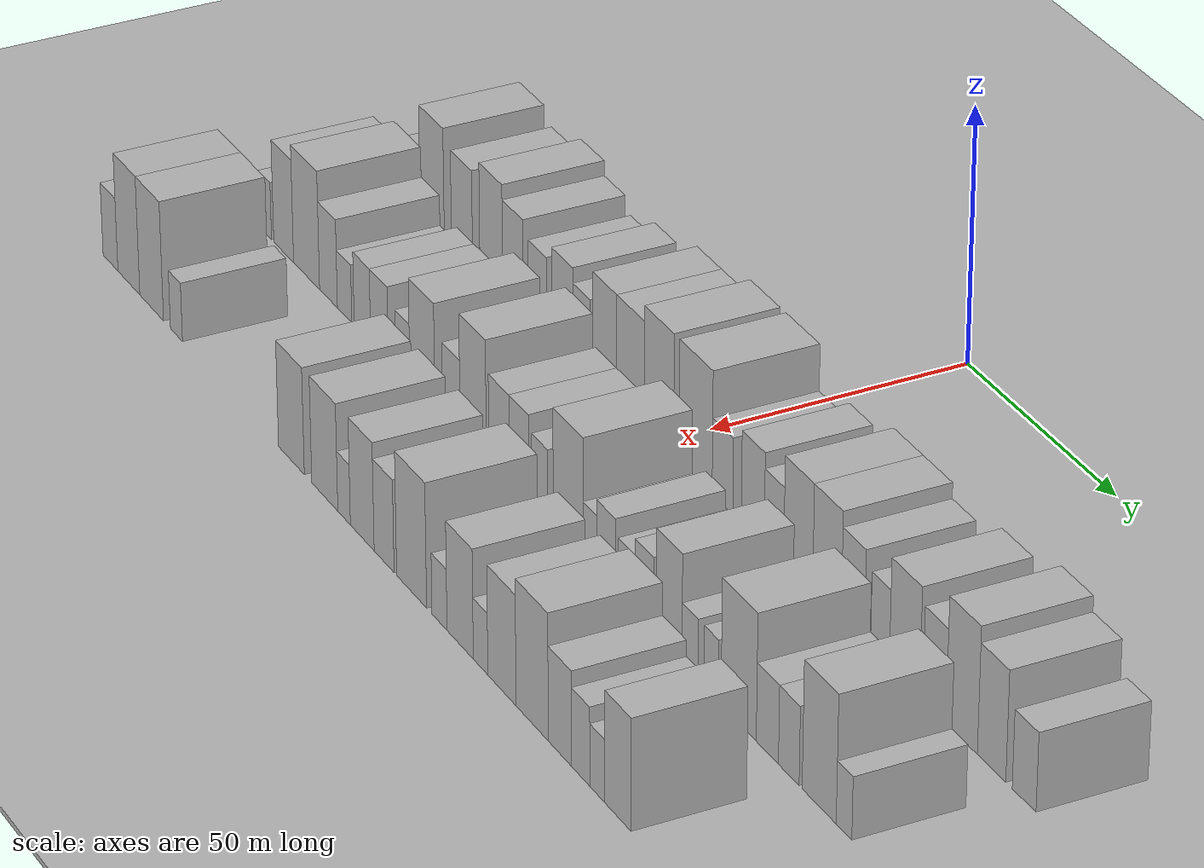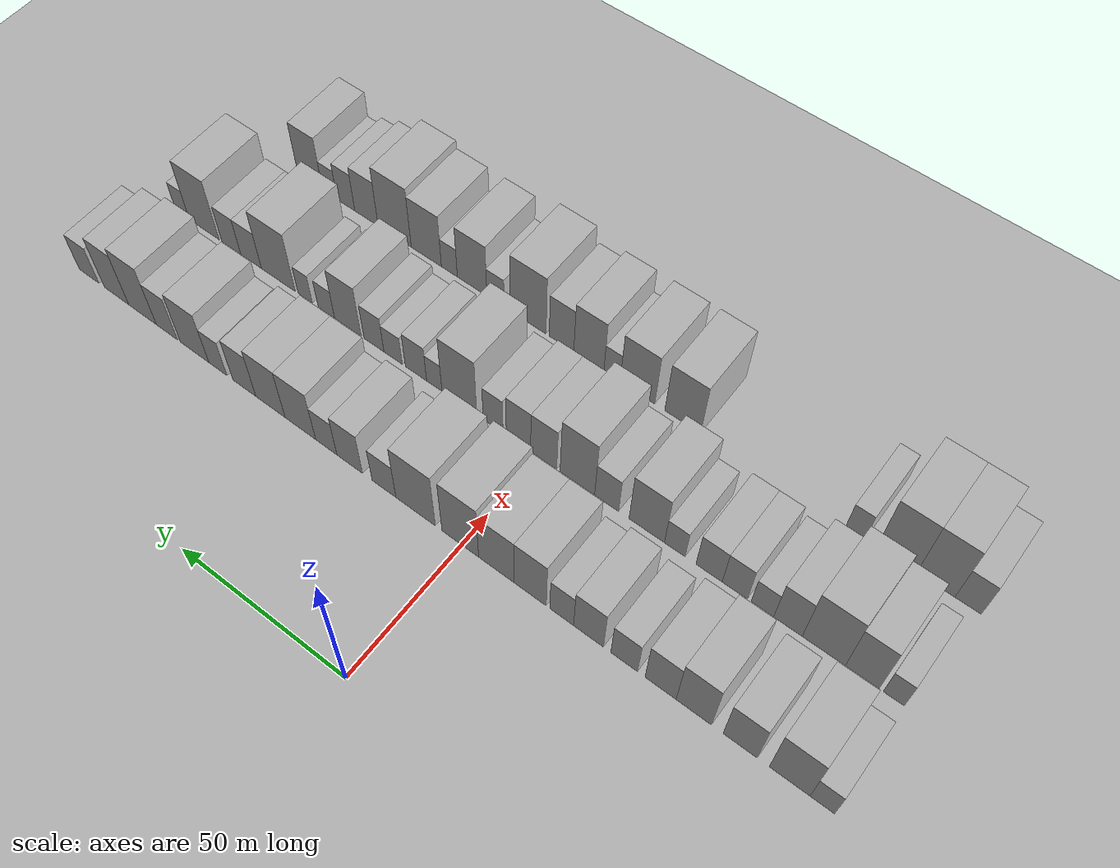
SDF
<sdf version="1.6">
 <world name="default">
  <include><name>ground_plane_1</name><uri>model://HANNAS_ground_plane</uri></include>
  <include>
   <name>ground_plane_2</name>
   <uri>model://HANNAS_ground_plane</uri>
   <pose>100 0 0  0 0 0</pose>
  </include>
  <model name="building_28">
   <static>1</static>
   <pose>50.0000 -96.7376 0 0.000000 0.000000 0.000000</pose>
   <link name="link">
    <pose>0 0 6.00 0 0 0</pose>
    <collision name="collision"><geometry><box><size>20.0000 5.9690 12.0000</size></box></geometry></collision>
    <visual name="visual">
     <cast_shadows>0</cast_shadows>
     <geometry><box><size>20.0000 5.9690 12.0000</size></box></geometry>
     <material>
      <script>
       <uri>model://HANNAS_wall/materials/scripts</uri>
       <uri>model://HANNAS_wall/materials/textures</uri>
       <name>vrc/HANNAS_wall</name>
      </script>
     </material>
    </visual>
   </link>
  </model>
  <model name="building_29">
   <static>1</static>
   <pose>50.0000 -88.7289 0 0.000000 0.000000 0.000000</pose>
   <link name="link">
    <pose>0 0 10.50 0 0 0</pose>
    <collision name="collision"><geometry><box><size>20.0000 10.0484 21.0000</size></box></geometry></collision>
    <visual name="visual">
     <cast_shadows>0</cast_shadows>
     <geometry><box><size>20.0000 10.0484 21.0000</size></box></geometry>
     <material>
      <script>
       <uri>model://HANNAS_wall/materials/scripts</uri>
       <uri>model://HANNAS_wall/materials/textures</uri>
       <name>vrc/HANNAS_wall</name>
      </script>
     </material>
    </visual>
   </link>
  </model>
  <model name="building_30">
   <static>1</static>
   <pose>50.0000 -76.3814 0 0.000000 0.000000 0.000000</pose>
   <link name="link">
    <pose>0 0 9.00 0 0 0</pose>
    <collision name="collision"><geometry><box><size>20.0000 8.6467 18.0000</size></box></geometry></collision>
    <visual name="visual">
     <cast_shadows>0</cast_shadows>
     <geometry><box><size>20.0000 8.6467 18.0000</size></box></geometry>
     <material>
      <script>
       <uri>model://HANNAS_wall/materials/scripts</uri>
       <uri>model://HANNAS_wall/materials/textures</uri>
       <name>vrc/HANNAS_wall</name>
      </script>
     </material>
    </visual>
   </link>
  </model>
  <model name="building_31">
   <static>1</static>
   <pose>50.0000 -64.4616 0 0.000000 0.000000 0.000000</pose>
   <link name="link">
    <pose>0 0 10.50 0 0 0</pose>
    <collision name="collision"><geometry><box><size>20.0000 9.1930 21.0000</size></box></geometry></collision>
    <visual name="visual">
     <cast_shadows>0</cast_shadows>
     <geometry><box><size>20.0000 9.1930 21.0000</size></box></geometry>
     <material>
      <script>
       <uri>model://HANNAS_wall/materials/scripts</uri>
       <uri>model://HANNAS_wall/materials/textures</uri>
       <name>vrc/HANNAS_wall</name>
      </script>
     </material>
    </visual>
   </link>
  </model>
  <model name="building_32">
   <static>1</static>
   <pose>50.0000 -55.7582 0 0.000000 0.000000 0.000000</pose>
   <link name="link">
    <pose>0 0 9.00 0 0 0</pose>
    <collision name="collision"><geometry><box><size>20.0000 8.2138 18.0000</size></box></geometry></collision>
    <visual name="visual">
     <cast_shadows>0</cast_shadows>
     <geometry><box><size>20.0000 8.2138 18.0000</size></box></geometry>
     <material>
      <script>
       <uri>model://HANNAS_wall/materials/scripts</uri>
       <uri>model://HANNAS_wall/materials/textures</uri>
       <name>vrc/HANNAS_wall</name>
      </script>
     </material>
    </visual>
   </link>
  </model>
  <model name="building_33">
   <static>1</static>
   <pose>50.0000 -46.0465 0 0.000000 0.000000 0.000000</pose>
   <link name="link">
    <pose>0 0 7.50 0 0 0</pose>
    <collision name="collision"><geometry><box><size>20.0000 7.2096 15.0000</size></box></geometry></collision>
    <visual name="visual">
     <cast_shadows>0</cast_shadows>
     <geometry><box><size>20.0000 7.2096 15.0000</size></box></geometry>
     <material>
      <script>
       <uri>model://HANNAS_wall/materials/scripts</uri>
       <uri>model://HANNAS_wall/materials/textures</uri>
       <name>vrc/HANNAS_wall</name>
      </script>
     </material>
    </visual>
   </link>
  </model>
  <model name="building_34">
   <static>1</static>
   <pose>50.0000 -36.3242 0 0.000000 0.000000 0.000000</pose>
   <link name="link">
    <pose>0 0 9.00 0 0 0</pose>
    <collision name="collision"><geometry><box><size>20.0000 8.2350 18.0000</size></box></geometry></collision>
    <visual name="visual">
     <cast_shadows>0</cast_shadows>
     <geometry><box><size>20.0000 8.2350 18.0000</size></box></geometry>
     <material>
      <script>
       <uri>model://HANNAS_wall/materials/scripts</uri>
       <uri>model://HANNAS_wall/materials/textures</uri>
       <name>vrc/HANNAS_wall</name>
      </script>
     </material>
    </visual>
   </link>
  </model>
  <model name="building_35">
   <static>1</static>
   <pose>50.0000 -28.8858 0 0.000000 0.000000 0.000000</pose>
   <link name="link">
    <pose>0 0 7.50 0 0 0</pose>
    <collision name="collision"><geometry><box><size>20.0000 6.6417 15.0000</size></box></geometry></collision>
    <visual name="visual">
     <cast_shadows>0</cast_shadows>
     <geometry><box><size>20.0000 6.6417 15.0000</size></box></geometry>
     <material>
      <script>
       <uri>model://HANNAS_wall/materials/scripts</uri>
       <uri>model://HANNAS_wall/materials/textures</uri>
       <name>vrc/HANNAS_wall</name>
      </script>
     </material>
    </visual>
   </link>
  </model>
  <model name="building_36">
   <static>1</static>
   <pose>50.0000 -20.0085 0 0.000000 0.000000 0.000000</pose>
   <link name="link">
    <pose>0 0 10.50 0 0 0</pose>
    <collision name="collision"><geometry><box><size>20.0000 9.1130 21.0000</size></box></geometry></collision>
    <visual name="visual">
     <cast_shadows>0</cast_shadows>
     <geometry><box><size>20.0000 9.1130 21.0000</size></box></geometry>
     <material>
      <script>
       <uri>model://HANNAS_wall/materials/scripts</uri>
       <uri>model://HANNAS_wall/materials/textures</uri>
       <name>vrc/HANNAS_wall</name>
      </script>
     </material>
    </visual>
   </link>
  </model>
  <model name="building_37">
   <static>1</static>
   <pose>50.0000 -10.3064 0 0.000000 0.000000 0.000000</pose>
   <link name="link">
    <pose>0 0 10.50 0 0 0</pose>
    <collision name="collision"><geometry><box><size>20.0000 10.2912 21.0000</size></box></geometry></collision>
    <visual name="visual">
     <cast_shadows>0</cast_shadows>
     <geometry><box><size>20.0000 10.2912 21.0000</size></box></geometry>
     <material>
      <script>
       <uri>model://HANNAS_wall/materials/scripts</uri>
       <uri>model://HANNAS_wall/materials/textures</uri>
       <name>vrc/HANNAS_wall</name>
      </script>
     </material>
    </visual>
   </link>
  </model>
  <model name="building_38">
   <static>1</static>
   <pose>50.0000 0.2645 0 0.000000 0.000000 0.000000</pose>
   <link name="link">
    <pose>0 0 12.00 0 0 0</pose>
    <collision name="collision"><geometry><box><size>20.0000 10.8505 24.0000</size></box></geometry></collision>
    <visual name="visual">
     <cast_shadows>0</cast_shadows>
     <geometry><box><size>20.0000 10.8505 24.0000</size></box></geometry>
     <material>
      <script>
       <uri>model://HANNAS_wall/materials/scripts</uri>
       <uri>model://HANNAS_wall/materials/textures</uri>
       <name>vrc/HANNAS_wall</name>
      </script>
     </material>
    </visual>
   </link>
  </model>
  <model name="building_39">
   <static>1</static>
   <pose>50.0000 13.6793 0 0.000000 0.000000 0.000000</pose>
   <link name="link">
    <pose>0 0 12.00 0 0 0</pose>
    <collision name="collision"><geometry><box><size>20.0000 11.9791 24.0000</size></box></geometry></collision>
    <visual name="visual">
     <cast_shadows>0</cast_shadows>
     <geometry><box><size>20.0000 11.9791 24.0000</size></box></geometry>
     <material>
      <script>
       <uri>model://HANNAS_wall/materials/scripts</uri>
       <uri>model://HANNAS_wall/materials/textures</uri>
       <name>vrc/HANNAS_wall</name>
      </script>
     </material>
    </visual>
   </link>
  </model>
  <model name="building_40">
   <static>1</static>
   <pose>50.0000 23.3545 0 0.000000 0.000000 0.000000</pose>
   <link name="link">
    <pose>0 0 7.50 0 0 0</pose>
    <collision name="collision"><geometry><box><size>20.0000 7.3714 15.0000</size></box></geometry></collision>
    <visual name="visual">
     <cast_shadows>0</cast_shadows>
     <geometry><box><size>20.0000 7.3714 15.0000</size></box></geometry>
     <material>
      <script>
       <uri>model://HANNAS_wall/materials/scripts</uri>
       <uri>model://HANNAS_wall/materials/textures</uri>
       <name>vrc/HANNAS_wall</name>
      </script>
     </material>
    </visual>
   </link>
  </model>
  <model name="building_41">
   <static>1</static>
   <pose>50.0000 34.0789 0 0.000000 0.000000 0.000000</pose>
   <link name="link">
    <pose>0 0 9.00 0 0 0</pose>
    <collision name="collision"><geometry><box><size>20.0000 8.0774 18.0000</size></box></geometry></collision>
    <visual name="visual">
     <cast_shadows>0</cast_shadows>
     <geometry><box><size>20.0000 8.0774 18.0000</size></box></geometry>
     <material>
      <script>
       <uri>model://HANNAS_wall/materials/scripts</uri>
       <uri>model://HANNAS_wall/materials/textures</uri>
       <name>vrc/HANNAS_wall</name>
      </script>
     </material>
    </visual>
   </link>
  </model>
  <model name="building_42">
   <static>1</static>
   <pose>50.0000 41.5247 0 0.000000 0.000000 0.000000</pose>
   <link name="link">
    <pose>0 0 7.50 0 0 0</pose>
    <collision name="collision"><geometry><box><size>20.0000 6.8142 15.0000</size></box></geometry></collision>
    <visual name="visual">
     <cast_shadows>0</cast_shadows>
     <geometry><box><size>20.0000 6.8142 15.0000</size></box></geometry>
     <material>
      <script>
       <uri>model://HANNAS_wall/materials/scripts</uri>
       <uri>model://HANNAS_wall/materials/textures</uri>
       <name>vrc/HANNAS_wall</name>
      </script>
     </material>
    </visual>
   </link>
  </model>
  <model name="building_43">
   <static>1</static>
   <pose>50.0000 49.9054 0 0.000000 0.000000 0.000000</pose>
   <link name="link">
    <pose>0 0 10.50 0 0 0</pose>
    <collision name="collision"><geometry><box><size>20.0000 9.9473 21.0000</size></box></geometry></collision>
    <visual name="visual">
     <cast_shadows>0</cast_shadows>
     <geometry><box><size>20.0000 9.9473 21.0000</size></box></geometry>
     <material>
      <script>
       <uri>model://HANNAS_wall/materials/scripts</uri>
       <uri>model://HANNAS_wall/materials/textures</uri>
       <name>vrc/HANNAS_wall</name>
      </script>
     </material>
    </visual>
   </link>
  </model>
  <model name="building_44">
   <static>1</static>
   <pose>50.0000 59.7354 0 0.000000 0.000000 0.000000</pose>
   <link name="link">
    <pose>0 0 10.50 0 0 0</pose>
    <collision name="collision"><geometry><box><size>20.0000 9.7126 21.0000</size></box></geometry></collision>
    <visual name="visual">
     <cast_shadows>0</cast_shadows>
     <geometry><box><size>20.0000 9.7126 21.0000</size></box></geometry>
     <material>
      <script>
       <uri>model://HANNAS_wall/materials/scripts</uri>
       <uri>model://HANNAS_wall/materials/textures</uri>
       <name>vrc/HANNAS_wall</name>
      </script>
     </material>
    </visual>
   </link>
  </model>
  <model name="building_45">
   <static>1</static>
   <pose>50.0000 68.4710 0 0.000000 0.000000 0.000000</pose>
   <link name="link">
    <pose>0 0 9.00 0 0 0</pose>
    <collision name="collision"><geometry><box><size>20.0000 7.7587 18.0000</size></box></geometry></collision>
    <visual name="visual">
     <cast_shadows>0</cast_shadows>
     <geometry><box><size>20.0000 7.7587 18.0000</size></box></geometry>
     <material>
      <script>
       <uri>model://HANNAS_wall/materials/scripts</uri>
       <uri>model://HANNAS_wall/materials/textures</uri>
       <name>vrc/HANNAS_wall</name>
      </script>
     </material>
    </visual>
   </link>
  </model>
  <model name="building_46">
   <static>1</static>
   <pose>50.0000 77.4622 0 0.000000 0.000000 0.000000</pose>
   <link name="link">
    <pose>0 0 7.50 0 0 0</pose>
    <collision name="collision"><geometry><box><size>20.0000 6.2238 15.0000</size></box></geometry></collision>
    <visual name="visual">
     <cast_shadows>0</cast_shadows>
     <geometry><box><size>20.0000 6.2238 15.0000</size></box></geometry>
     <material>
      <script>
       <uri>model://HANNAS_wall/materials/scripts</uri>
       <uri>model://HANNAS_wall/materials/textures</uri>
       <name>vrc/HANNAS_wall</name>
      </script>
     </material>
    </visual>
   </link>
  </model>
  <model name="building_47">
   <static>1</static>
   <pose>50.0000 85.5248 0 0.000000 0.000000 0.000000</pose>
   <link name="link">
    <pose>0 0 10.50 0 0 0</pose>
    <collision name="collision"><geometry><box><size>20.0000 9.9014 21.0000</size></box></geometry></collision>
    <visual name="visual">
     <cast_shadows>0</cast_shadows>
     <geometry><box><size>20.0000 9.9014 21.0000</size></box></geometry>
     <material>
      <script>
       <uri>model://HANNAS_wall/materials/scripts</uri>
       <uri>model://HANNAS_wall/materials/textures</uri>
       <name>vrc/HANNAS_wall</name>
      </script>
     </material>
    </visual>
   </link>
  </model>
  <model name="building_48">
   <static>1</static>
   <pose>50.0000 95.2247 0 0.000000 0.000000 0.000000</pose>
   <link name="link">
    <pose>0 0 9.00 0 0 0</pose>
    <collision name="collision"><geometry><box><size>20.0000 7.4985 18.0000</size></box></geometry></collision>
    <visual name="visual">
     <cast_shadows>0</cast_shadows>
     <geometry><box><size>20.0000 7.4985 18.0000</size></box></geometry>
     <material>
      <script>
       <uri>model://HANNAS_wall/materials/scripts</uri>
       <uri>model://HANNAS_wall/materials/textures</uri>
       <name>vrc/HANNAS_wall</name>
      </script>
     </material>
    </visual>
   </link>
  </model>
  <model name="building_49">
   <static>1</static>
   <pose>50.0000 103.9581 0 0.000000 0.000000 0.000000</pose>
   <link name="link">
    <pose>0 0 12.00 0 0 0</pose>
    <collision name="collision"><geometry><box><size>20.0000 9.9683 24.0000</size></box></geometry></collision>
    <visual name="visual">
     <cast_shadows>0</cast_shadows>
     <geometry><box><size>20.0000 9.9683 24.0000</size></box></geometry>
     <material>
      <script>
       <uri>model://HANNAS_wall/materials/scripts</uri>
       <uri>model://HANNAS_wall/materials/textures</uri>
       <name>vrc/HANNAS_wall</name>
      </script>
     </material>
    </visual>
   </link>
  </model>
  <model name="building_50">
   <static>1</static>
   <pose>50.0000 113.3928 0 0.000000 0.000000 0.000000</pose>
   <link name="link">
    <pose>0 0 10.50 0 0 0</pose>
    <collision name="collision"><geometry><box><size>20.0000 8.9011 21.0000</size></box></geometry></collision>
    <visual name="visual">
     <cast_shadows>0</cast_shadows>
     <geometry><box><size>20.0000 8.9011 21.0000</size></box></geometry>
     <material>
      <script>
       <uri>model://HANNAS_wall/materials/scripts</uri>
       <uri>model://HANNAS_wall/materials/textures</uri>
       <name>vrc/HANNAS_wall</name>
      </script>
     </material>
    </visual>
   </link>
  </model>
  <model name="building_51">
   <static>1</static>
   <pose>50.0000 123.5174 0 0.000000 0.000000 0.000000</pose>
   <link name="link">
    <pose>0 0 7.50 0 0 0</pose>
    <collision name="collision"><geometry><box><size>20.0000 7.3481 15.0000</size></box></geometry></collision>
    <visual name="visual">
     <cast_shadows>0</cast_shadows>
     <geometry><box><size>20.0000 7.3481 15.0000</size></box></geometry>
     <material>
      <script>
       <uri>model://HANNAS_wall/materials/scripts</uri>
       <uri>model://HANNAS_wall/materials/textures</uri>
       <name>vrc/HANNAS_wall</name>
      </script>
     </material>
    </visual>
   </link>
  </model>
  <model name="building_99">
   <static>1</static>
   <pose>79.0000 -96.9972 0 0.000000 0.000000 0.000000</pose>
   <link name="link">
    <pose>0 0 6.00 0 0 0</pose>
    <collision name="collision"><geometry><box><size>20.0000 5.2302 12.0000</size></box></geometry></collision>
    <visual name="visual">
     <cast_shadows>0</cast_shadows>
     <geometry><box><size>20.0000 5.2302 12.0000</size></box></geometry>
     <material>
      <script>
       <uri>model://HANNAS_wall/materials/scripts</uri>
       <uri>model://HANNAS_wall/materials/textures</uri>
       <name>vrc/HANNAS_wall</name>
      </script>
     </material>
    </visual>
   </link>
  </model>
  <model name="building_100">
   <static>1</static>
   <pose>79.0000 -89.1226 0 0.000000 0.000000 0.000000</pose>
   <link name="link">
    <pose>0 0 10.50 0 0 0</pose>
    <collision name="collision"><geometry><box><size>20.0000 8.5191 21.0000</size></box></geometry></collision>
    <visual name="visual">
     <cast_shadows>0</cast_shadows>
     <geometry><box><size>20.0000 8.5191 21.0000</size></box></geometry>
     <material>
      <script>
       <uri>model://HANNAS_wall/materials/scripts</uri>
       <uri>model://HANNAS_wall/materials/textures</uri>
       <name>vrc/HANNAS_wall</name>
      </script>
     </material>
    </visual>
   </link>
  </model>
  <model name="building_101">
   <static>1</static>
   <pose>79.0000 -79.3343 0 0.000000 0.000000 0.000000</pose>
   <link name="link">
    <pose>0 0 12.00 0 0 0</pose>
    <collision name="collision"><geometry><box><size>20.0000 11.0576 24.0000</size></box></geometry></collision>
    <visual name="visual">
     <cast_shadows>0</cast_shadows>
     <geometry><box><size>20.0000 11.0576 24.0000</size></box></geometry>
     <material>
      <script>
       <uri>model://HANNAS_wall/materials/scripts</uri>
       <uri>model://HANNAS_wall/materials/textures</uri>
       <name>vrc/HANNAS_wall</name>
      </script>
     </material>
    </visual>
   </link>
  </model>
  <model name="building_102">
   <static>1</static>
   <pose>79.0000 -70.0628 0 0.000000 0.000000 0.000000</pose>
   <link name="link">
    <pose>0 0 9.00 0 0 0</pose>
    <collision name="collision"><geometry><box><size>20.0000 7.4854 18.0000</size></box></geometry></collision>
    <visual name="visual">
     <cast_shadows>0</cast_shadows>
     <geometry><box><size>20.0000 7.4854 18.0000</size></box></geometry>
     <material>
      <script>
       <uri>model://HANNAS_wall/materials/scripts</uri>
       <uri>model://HANNAS_wall/materials/textures</uri>
       <name>vrc/HANNAS_wall</name>
      </script>
     </material>
    </visual>
   </link>
  </model>
  <model name="building_103">
   <static>1</static>
   <pose>79.0000 -63.3273 0 0.000000 0.000000 0.000000</pose>
   <link name="link">
    <pose>0 0 6.00 0 0 0</pose>
    <collision name="collision"><geometry><box><size>20.0000 5.9856 12.0000</size></box></geometry></collision>
    <visual name="visual">
     <cast_shadows>0</cast_shadows>
     <geometry><box><size>20.0000 5.9856 12.0000</size></box></geometry>
     <material>
      <script>
       <uri>model://HANNAS_wall/materials/scripts</uri>
       <uri>model://HANNAS_wall/materials/textures</uri>
       <name>vrc/HANNAS_wall</name>
      </script>
     </material>
    </visual>
   </link>
  </model>
  <model name="building_104">
   <static>1</static>
   <pose>79.0000 -55.9555 0 0.000000 0.000000 0.000000</pose>
   <link name="link">
    <pose>0 0 7.50 0 0 0</pose>
    <collision name="collision"><geometry><box><size>20.0000 6.7579 15.0000</size></box></geometry></collision>
    <visual name="visual">
     <cast_shadows>0</cast_shadows>
     <geometry><box><size>20.0000 6.7579 15.0000</size></box></geometry>
     <material>
      <script>
       <uri>model://HANNAS_wall/materials/scripts</uri>
       <uri>model://HANNAS_wall/materials/textures</uri>
       <name>vrc/HANNAS_wall</name>
      </script>
     </material>
    </visual>
   </link>
  </model>
  <model name="building_105">
   <static>1</static>
   <pose>79.0000 -48.9825 0 0.000000 0.000000 0.000000</pose>
   <link name="link">
    <pose>0 0 7.50 0 0 0</pose>
    <collision name="collision"><geometry><box><size>20.0000 7.1881 15.0000</size></box></geometry></collision>
    <visual name="visual">
     <cast_shadows>0</cast_shadows>
     <geometry><box><size>20.0000 7.1881 15.0000</size></box></geometry>
     <material>
      <script>
       <uri>model://HANNAS_wall/materials/scripts</uri>
       <uri>model://HANNAS_wall/materials/textures</uri>
       <name>vrc/HANNAS_wall</name>
      </script>
     </material>
    </visual>
   </link>
  </model>
  <model name="building_106">
   <static>1</static>
   <pose>79.0000 -39.5160 0 0.000000 0.000000 0.000000</pose>
   <link name="link">
    <pose>0 0 6.00 0 0 0</pose>
    <collision name="collision"><geometry><box><size>20.0000 5.7448 12.0000</size></box></geometry></collision>
    <visual name="visual">
     <cast_shadows>0</cast_shadows>
     <geometry><box><size>20.0000 5.7448 12.0000</size></box></geometry>
     <material>
      <script>
       <uri>model://HANNAS_wall/materials/scripts</uri>
       <uri>model://HANNAS_wall/materials/textures</uri>
       <name>vrc/HANNAS_wall</name>
      </script>
     </material>
    </visual>
   </link>
  </model>
  <model name="building_107">
   <static>1</static>
   <pose>79.0000 -31.6484 0 0.000000 0.000000 0.000000</pose>
   <link name="link">
    <pose>0 0 10.50 0 0 0</pose>
    <collision name="collision"><geometry><box><size>20.0000 9.9904 21.0000</size></box></geometry></collision>
    <visual name="visual">
     <cast_shadows>0</cast_shadows>
     <geometry><box><size>20.0000 9.9904 21.0000</size></box></geometry>
     <material>
      <script>
       <uri>model://HANNAS_wall/materials/scripts</uri>
       <uri>model://HANNAS_wall/materials/textures</uri>
       <name>vrc/HANNAS_wall</name>
      </script>
     </material>
    </visual>
   </link>
  </model>
  <model name="building_108">
   <static>1</static>
   <pose>79.0000 -20.1985 0 0.000000 0.000000 0.000000</pose>
   <link name="link">
    <pose>0 0 7.50 0 0 0</pose>
    <collision name="collision"><geometry><box><size>20.0000 6.9095 15.0000</size></box></geometry></collision>
    <visual name="visual">
     <cast_shadows>0</cast_shadows>
     <geometry><box><size>20.0000 6.9095 15.0000</size></box></geometry>
     <material>
      <script>
       <uri>model://HANNAS_wall/materials/scripts</uri>
       <uri>model://HANNAS_wall/materials/textures</uri>
       <name>vrc/HANNAS_wall</name>
      </script>
     </material>
    </visual>
   </link>
  </model>
  <model name="building_109">
   <static>1</static>
   <pose>79.0000 -11.6639 0 0.000000 0.000000 0.000000</pose>
   <link name="link">
    <pose>0 0 12.00 0 0 0</pose>
    <collision name="collision"><geometry><box><size>20.0000 10.1596 24.0000</size></box></geometry></collision>
    <visual name="visual">
     <cast_shadows>0</cast_shadows>
     <geometry><box><size>20.0000 10.1596 24.0000</size></box></geometry>
     <material>
      <script>
       <uri>model://HANNAS_wall/materials/scripts</uri>
       <uri>model://HANNAS_wall/materials/textures</uri>
       <name>vrc/HANNAS_wall</name>
      </script>
     </material>
    </visual>
   </link>
  </model>
  <model name="building_110">
   <static>1</static>
   <pose>79.0000 -1.6914 0 0.000000 0.000000 0.000000</pose>
   <link name="link">
    <pose>0 0 9.00 0 0 0</pose>
    <collision name="collision"><geometry><box><size>20.0000 7.7854 18.0000</size></box></geometry></collision>
    <visual name="visual">
     <cast_shadows>0</cast_shadows>
     <geometry><box><size>20.0000 7.7854 18.0000</size></box></geometry>
     <material>
      <script>
       <uri>model://HANNAS_wall/materials/scripts</uri>
       <uri>model://HANNAS_wall/materials/textures</uri>
       <name>vrc/HANNAS_wall</name>
      </script>
     </material>
    </visual>
   </link>
  </model>
  <model name="building_111">
   <static>1</static>
   <pose>79.0000 5.8874 0 0.000000 0.000000 0.000000</pose>
   <link name="link">
    <pose>0 0 9.00 0 0 0</pose>
    <collision name="collision"><geometry><box><size>20.0000 7.3723 18.0000</size></box></geometry></collision>
    <visual name="visual">
     <cast_shadows>0</cast_shadows>
     <geometry><box><size>20.0000 7.3723 18.0000</size></box></geometry>
     <material>
      <script>
       <uri>model://HANNAS_wall/materials/scripts</uri>
       <uri>model://HANNAS_wall/materials/textures</uri>
       <name>vrc/HANNAS_wall</name>
      </script>
     </material>
    </visual>
   </link>
  </model>
  <model name="building_112">
   <static>1</static>
   <pose>79.0000 13.6257 0 0.000000 0.000000 0.000000</pose>
   <link name="link">
    <pose>0 0 7.50 0 0 0</pose>
    <collision name="collision"><geometry><box><size>20.0000 6.1043 15.0000</size></box></geometry></collision>
    <visual name="visual">
     <cast_shadows>0</cast_shadows>
     <geometry><box><size>20.0000 6.1043 15.0000</size></box></geometry>
     <material>
      <script>
       <uri>model://HANNAS_wall/materials/scripts</uri>
       <uri>model://HANNAS_wall/materials/textures</uri>
       <name>vrc/HANNAS_wall</name>
      </script>
     </material>
    </visual>
   </link>
  </model>
  <model name="building_113">
   <static>1</static>
   <pose>79.0000 24.1483 0 0.000000 0.000000 0.000000</pose>
   <link name="link">
    <pose>0 0 12.00 0 0 0</pose>
    <collision name="collision"><geometry><box><size>20.0000 10.9408 24.0000</size></box></geometry></collision>
    <visual name="visual">
     <cast_shadows>0</cast_shadows>
     <geometry><box><size>20.0000 10.9408 24.0000</size></box></geometry>
     <material>
      <script>
       <uri>model://HANNAS_wall/materials/scripts</uri>
       <uri>model://HANNAS_wall/materials/textures</uri>
       <name>vrc/HANNAS_wall</name>
      </script>
     </material>
    </visual>
   </link>
  </model>
  <model name="building_114">
   <static>1</static>
   <pose>79.0000 32.0598 0 0.000000 0.000000 0.000000</pose>
   <link name="link">
    <pose>0 0 6.00 0 0 0</pose>
    <collision name="collision"><geometry><box><size>20.0000 4.8822 12.0000</size></box></geometry></collision>
    <visual name="visual">
     <cast_shadows>0</cast_shadows>
     <geometry><box><size>20.0000 4.8822 12.0000</size></box></geometry>
     <material>
      <script>
       <uri>model://HANNAS_wall/materials/scripts</uri>
       <uri>model://HANNAS_wall/materials/textures</uri>
       <name>vrc/HANNAS_wall</name>
      </script>
     </material>
    </visual>
   </link>
  </model>
  <model name="building_115">
   <static>1</static>
   <pose>79.0000 37.9210 0 0.000000 0.000000 0.000000</pose>
   <link name="link">
    <pose>0 0 7.50 0 0 0</pose>
    <collision name="collision"><geometry><box><size>20.0000 6.8402 15.0000</size></box></geometry></collision>
    <visual name="visual">
     <cast_shadows>0</cast_shadows>
     <geometry><box><size>20.0000 6.8402 15.0000</size></box></geometry>
     <material>
      <script>
       <uri>model://HANNAS_wall/materials/scripts</uri>
       <uri>model://HANNAS_wall/materials/textures</uri>
       <name>vrc/HANNAS_wall</name>
      </script>
     </material>
    </visual>
   </link>
  </model>
  <model name="building_116">
   <static>1</static>
   <pose>79.0000 45.3367 0 0.000000 0.000000 0.000000</pose>
   <link name="link">
    <pose>0 0 6.00 0 0 0</pose>
    <collision name="collision"><geometry><box><size>20.0000 5.9912 12.0000</size></box></geometry></collision>
    <visual name="visual">
     <cast_shadows>0</cast_shadows>
     <geometry><box><size>20.0000 5.9912 12.0000</size></box></geometry>
     <material>
      <script>
       <uri>model://HANNAS_wall/materials/scripts</uri>
       <uri>model://HANNAS_wall/materials/textures</uri>
       <name>vrc/HANNAS_wall</name>
      </script>
     </material>
    </visual>
   </link>
  </model>
  <model name="building_117">
   <static>1</static>
   <pose>79.0000 51.6072 0 0.000000 0.000000 0.000000</pose>
   <link name="link">
    <pose>0 0 7.50 0 0 0</pose>
    <collision name="collision"><geometry><box><size>20.0000 6.5499 15.0000</size></box></geometry></collision>
    <visual name="visual">
     <cast_shadows>0</cast_shadows>
     <geometry><box><size>20.0000 6.5499 15.0000</size></box></geometry>
     <material>
      <script>
       <uri>model://HANNAS_wall/materials/scripts</uri>
       <uri>model://HANNAS_wall/materials/textures</uri>
       <name>vrc/HANNAS_wall</name>
      </script>
     </material>
    </visual>
   </link>
  </model>
  <model name="building_118">
   <static>1</static>
   <pose>79.0000 60.3320 0 0.000000 0.000000 0.000000</pose>
   <link name="link">
    <pose>0 0 10.50 0 0 0</pose>
    <collision name="collision"><geometry><box><size>20.0000 8.8999 21.0000</size></box></geometry></collision>
    <visual name="visual">
     <cast_shadows>0</cast_shadows>
     <geometry><box><size>20.0000 8.8999 21.0000</size></box></geometry>
     <material>
      <script>
       <uri>model://HANNAS_wall/materials/scripts</uri>
       <uri>model://HANNAS_wall/materials/textures</uri>
       <name>vrc/HANNAS_wall</name>
      </script>
     </material>
    </visual>
   </link>
  </model>
  <model name="building_119">
   <static>1</static>
   <pose>79.0000 67.5649 0 0.000000 0.000000 0.000000</pose>
   <link name="link">
    <pose>0 0 6.00 0 0 0</pose>
    <collision name="collision"><geometry><box><size>20.0000 5.5659 12.0000</size></box></geometry></collision>
    <visual name="visual">
     <cast_shadows>0</cast_shadows>
     <geometry><box><size>20.0000 5.5659 12.0000</size></box></geometry>
     <material>
      <script>
       <uri>model://HANNAS_wall/materials/scripts</uri>
       <uri>model://HANNAS_wall/materials/textures</uri>
       <name>vrc/HANNAS_wall</name>
      </script>
     </material>
    </visual>
   </link>
  </model>
  <model name="building_120">
   <static>1</static>
   <pose>79.0000 74.7906 0 0.000000 0.000000 0.000000</pose>
   <link name="link">
    <pose>0 0 6.00 0 0 0</pose>
    <collision name="collision"><geometry><box><size>20.0000 4.8855 12.0000</size></box></geometry></collision>
    <visual name="visual">
     <cast_shadows>0</cast_shadows>
     <geometry><box><size>20.0000 4.8855 12.0000</size></box></geometry>
     <material>
      <script>
       <uri>model://HANNAS_wall/materials/scripts</uri>
       <uri>model://HANNAS_wall/materials/textures</uri>
       <name>vrc/HANNAS_wall</name>
      </script>
     </material>
    </visual>
   </link>
  </model>
  <model name="building_121">
   <static>1</static>
   <pose>79.0000 84.1583 0 0.000000 0.000000 0.000000</pose>
   <link name="link">
    <pose>0 0 12.00 0 0 0</pose>
    <collision name="collision"><geometry><box><size>20.0000 11.8498 24.0000</size></box></geometry></collision>
    <visual name="visual">
     <cast_shadows>0</cast_shadows>
     <geometry><box><size>20.0000 11.8498 24.0000</size></box></geometry>
     <material>
      <script>
       <uri>model://HANNAS_wall/materials/scripts</uri>
       <uri>model://HANNAS_wall/materials/textures</uri>
       <name>vrc/HANNAS_wall</name>
      </script>
     </material>
    </visual>
   </link>
  </model>
  <model name="building_122">
   <static>1</static>
   <pose>79.0000 93.7693 0 0.000000 0.000000 0.000000</pose>
   <link name="link">
    <pose>0 0 7.50 0 0 0</pose>
    <collision name="collision"><geometry><box><size>20.0000 7.3723 15.0000</size></box></geometry></collision>
    <visual name="visual">
     <cast_shadows>0</cast_shadows>
     <geometry><box><size>20.0000 7.3723 15.0000</size></box></geometry>
     <material>
      <script>
       <uri>model://HANNAS_wall/materials/scripts</uri>
       <uri>model://HANNAS_wall/materials/textures</uri>
       <name>vrc/HANNAS_wall</name>
      </script>
     </material>
    </visual>
   </link>
  </model>
  <model name="building_123">
   <static>1</static>
   <pose>79.0000 100.8481 0 0.000000 0.000000 0.000000</pose>
   <link name="link">
    <pose>0 0 7.50 0 0 0</pose>
    <collision name="collision"><geometry><box><size>20.0000 6.7854 15.0000</size></box></geometry></collision>
    <visual name="visual">
     <cast_shadows>0</cast_shadows>
     <geometry><box><size>20.0000 6.7854 15.0000</size></box></geometry>
     <material>
      <script>
       <uri>model://HANNAS_wall/materials/scripts</uri>
       <uri>model://HANNAS_wall/materials/textures</uri>
       <name>vrc/HANNAS_wall</name>
      </script>
     </material>
    </visual>
   </link>
  </model>
  <model name="building_124">
   <static>1</static>
   <pose>79.0000 110.7439 0 0.000000 0.000000 0.000000</pose>
   <link name="link">
    <pose>0 0 12.00 0 0 0</pose>
    <collision name="collision"><geometry><box><size>20.0000 11.0062 24.0000</size></box></geometry></collision>
    <visual name="visual">
     <cast_shadows>0</cast_shadows>
     <geometry><box><size>20.0000 11.0062 24.0000</size></box></geometry>
     <material>
      <script>
       <uri>model://HANNAS_wall/materials/scripts</uri>
       <uri>model://HANNAS_wall/materials/textures</uri>
       <name>vrc/HANNAS_wall</name>
      </script>
     </material>
    </visual>
   </link>
  </model>
  <model name="building_125">
   <static>1</static>
   <pose>79.0000 118.7423 0 0.000000 0.000000 0.000000</pose>
   <link name="link">
    <pose>0 0 6.00 0 0 0</pose>
    <collision name="collision"><geometry><box><size>20.0000 4.9907 12.0000</size></box></geometry></collision>
    <visual name="visual">
     <cast_shadows>0</cast_shadows>
     <geometry><box><size>20.0000 4.9907 12.0000</size></box></geometry>
     <material>
      <script>
       <uri>model://HANNAS_wall/materials/scripts</uri>
       <uri>model://HANNAS_wall/materials/textures</uri>
       <name>vrc/HANNAS_wall</name>
      </script>
     </material>
    </visual>
   </link>
  </model>
  <model name="building_171">
   <static>1</static>
   <pose>108.0000 -99.3311 0 0.000000 0.000000 0.000000</pose>
   <link name="link">
    <pose>0 0 7.50 0 0 0</pose>
    <collision name="collision"><geometry><box><size>20.0000 6.6766 15.0000</size></box></geometry></collision>
    <visual name="visual">
     <cast_shadows>0</cast_shadows>
     <geometry><box><size>20.0000 6.6766 15.0000</size></box></geometry>
     <material>
      <script>
       <uri>model://HANNAS_wall/materials/scripts</uri>
       <uri>model://HANNAS_wall/materials/textures</uri>
       <name>vrc/HANNAS_wall</name>
      </script>
     </material>
    </visual>
   </link>
  </model>
  <model name="building_172">
   <static>1</static>
   <pose>108.0000 -91.1019 0 0.000000 0.000000 0.000000</pose>
   <link name="link">
    <pose>0 0 12.00 0 0 0</pose>
    <collision name="collision"><geometry><box><size>20.0000 9.7817 24.0000</size></box></geometry></collision>
    <visual name="visual">
     <cast_shadows>0</cast_shadows>
     <geometry><box><size>20.0000 9.7817 24.0000</size></box></geometry>
     <material>
      <script>
       <uri>model://HANNAS_wall/materials/scripts</uri>
       <uri>model://HANNAS_wall/materials/textures</uri>
       <name>vrc/HANNAS_wall</name>
      </script>
     </material>
    </visual>
   </link>
  </model>
  <model name="building_173">
   <static>1</static>
   <pose>108.0000 -80.9838 0 0.000000 0.000000 0.000000</pose>
   <link name="link">
    <pose>0 0 12.00 0 0 0</pose>
    <collision name="collision"><geometry><box><size>20.0000 10.4546 24.0000</size></box></geometry></collision>
    <visual name="visual">
     <cast_shadows>0</cast_shadows>
     <geometry><box><size>20.0000 10.4546 24.0000</size></box></geometry>
     <material>
      <script>
       <uri>model://HANNAS_wall/materials/scripts</uri>
       <uri>model://HANNAS_wall/materials/textures</uri>
       <name>vrc/HANNAS_wall</name>
      </script>
     </material>
    </visual>
   </link>
  </model>
  <model name="building_174">
   <static>1</static>
   <pose>108.0000 -70.1361 0 0.000000 0.000000 0.000000</pose>
   <link name="link">
    <pose>0 0 6.00 0 0 0</pose>
    <collision name="collision"><geometry><box><size>20.0000 5.2408 12.0000</size></box></geometry></collision>
    <visual name="visual">
     <cast_shadows>0</cast_shadows>
     <geometry><box><size>20.0000 5.2408 12.0000</size></box></geometry>
     <material>
      <script>
       <uri>model://HANNAS_wall/materials/scripts</uri>
       <uri>model://HANNAS_wall/materials/textures</uri>
       <name>vrc/HANNAS_wall</name>
      </script>
     </material>
    </visual>
   </link>
  </model>
  <model name="building_175">
   <static>1</static>
   <pose>108.0000 -21.8349 0 0.000000 0.000000 0.000000</pose>
   <link name="link">
    <pose>0 0 10.50 0 0 0</pose>
    <collision name="collision"><geometry><box><size>20.0000 10.4539 21.0000</size></box></geometry></collision>
    <visual name="visual">
     <cast_shadows>0</cast_shadows>
     <geometry><box><size>20.0000 10.4539 21.0000</size></box></geometry>
     <material>
      <script>
       <uri>model://HANNAS_wall/materials/scripts</uri>
       <uri>model://HANNAS_wall/materials/textures</uri>
       <name>vrc/HANNAS_wall</name>
      </script>
     </material>
    </visual>
   </link>
  </model>
  <model name="building_176">
   <static>1</static>
   <pose>108.0000 -8.4186 0 0.000000 0.000000 0.000000</pose>
   <link name="link">
    <pose>0 0 10.50 0 0 0</pose>
    <collision name="collision"><geometry><box><size>20.0000 10.3789 21.0000</size></box></geometry></collision>
    <visual name="visual">
     <cast_shadows>0</cast_shadows>
     <geometry><box><size>20.0000 10.3789 21.0000</size></box></geometry>
     <material>
      <script>
       <uri>model://HANNAS_wall/materials/scripts</uri>
       <uri>model://HANNAS_wall/materials/textures</uri>
       <name>vrc/HANNAS_wall</name>
      </script>
     </material>
    </visual>
   </link>
  </model>
  <model name="building_177">
   <static>1</static>
   <pose>108.0000 -0.7535 0 0.000000 0.000000 0.000000</pose>
   <link name="link">
    <pose>0 0 6.00 0 0 0</pose>
    <collision name="collision"><geometry><box><size>20.0000 4.9512 12.0000</size></box></geometry></collision>
    <visual name="visual">
     <cast_shadows>0</cast_shadows>
     <geometry><box><size>20.0000 4.9512 12.0000</size></box></geometry>
     <material>
      <script>
       <uri>model://HANNAS_wall/materials/scripts</uri>
       <uri>model://HANNAS_wall/materials/textures</uri>
       <name>vrc/HANNAS_wall</name>
      </script>
     </material>
    </visual>
   </link>
  </model>
  <model name="building_178">
   <static>1</static>
   <pose>108.0000 6.3634 0 0.000000 0.000000 0.000000</pose>
   <link name="link">
    <pose>0 0 10.50 0 0 0</pose>
    <collision name="collision"><geometry><box><size>20.0000 9.2826 21.0000</size></box></geometry></collision>
    <visual name="visual">
     <cast_shadows>0</cast_shadows>
     <geometry><box><size>20.0000 9.2826 21.0000</size></box></geometry>
     <material>
      <script>
       <uri>model://HANNAS_wall/materials/scripts</uri>
       <uri>model://HANNAS_wall/materials/textures</uri>
       <name>vrc/HANNAS_wall</name>
      </script>
     </material>
    </visual>
   </link>
  </model>
  <model name="building_179">
   <static>1</static>
   <pose>108.0000 14.8420 0 0.000000 0.000000 0.000000</pose>
   <link name="link">
    <pose>0 0 9.00 0 0 0</pose>
    <collision name="collision"><geometry><box><size>20.0000 7.6747 18.0000</size></box></geometry></collision>
    <visual name="visual">
     <cast_shadows>0</cast_shadows>
     <geometry><box><size>20.0000 7.6747 18.0000</size></box></geometry>
     <material>
      <script>
       <uri>model://HANNAS_wall/materials/scripts</uri>
       <uri>model://HANNAS_wall/materials/textures</uri>
       <name>vrc/HANNAS_wall</name>
      </script>
     </material>
    </visual>
   </link>
  </model>
  <model name="building_180">
   <static>1</static>
   <pose>108.0000 25.3670 0 0.000000 0.000000 0.000000</pose>
   <link name="link">
    <pose>0 0 12.00 0 0 0</pose>
    <collision name="collision"><geometry><box><size>20.0000 11.3753 24.0000</size></box></geometry></collision>
    <visual name="visual">
     <cast_shadows>0</cast_shadows>
     <geometry><box><size>20.0000 11.3753 24.0000</size></box></geometry>
     <material>
      <script>
       <uri>model://HANNAS_wall/materials/scripts</uri>
       <uri>model://HANNAS_wall/materials/textures</uri>
       <name>vrc/HANNAS_wall</name>
      </script>
     </material>
    </visual>
   </link>
  </model>
  <model name="building_181">
   <static>1</static>
   <pose>108.0000 35.8681 0 0.000000 0.000000 0.000000</pose>
   <link name="link">
    <pose>0 0 6.00 0 0 0</pose>
    <collision name="collision"><geometry><box><size>20.0000 5.6270 12.0000</size></box></geometry></collision>
    <visual name="visual">
     <cast_shadows>0</cast_shadows>
     <geometry><box><size>20.0000 5.6270 12.0000</size></box></geometry>
     <material>
      <script>
       <uri>model://HANNAS_wall/materials/scripts</uri>
       <uri>model://HANNAS_wall/materials/textures</uri>
       <name>vrc/HANNAS_wall</name>
      </script>
     </material>
    </visual>
   </link>
  </model>
  <model name="building_182">
   <static>1</static>
   <pose>108.0000 43.5416 0 0.000000 0.000000 0.000000</pose>
   <link name="link">
    <pose>0 0 10.50 0 0 0</pose>
    <collision name="collision"><geometry><box><size>20.0000 9.7200 21.0000</size></box></geometry></collision>
    <visual name="visual">
     <cast_shadows>0</cast_shadows>
     <geometry><box><size>20.0000 9.7200 21.0000</size></box></geometry>
     <material>
      <script>
       <uri>model://HANNAS_wall/materials/scripts</uri>
       <uri>model://HANNAS_wall/materials/textures</uri>
       <name>vrc/HANNAS_wall</name>
      </script>
     </material>
    </visual>
   </link>
  </model>
  <model name="building_183">
   <static>1</static>
   <pose>108.0000 51.0547 0 0.000000 0.000000 0.000000</pose>
   <link name="link">
    <pose>0 0 6.00 0 0 0</pose>
    <collision name="collision"><geometry><box><size>20.0000 5.3060 12.0000</size></box></geometry></collision>
    <visual name="visual">
     <cast_shadows>0</cast_shadows>
     <geometry><box><size>20.0000 5.3060 12.0000</size></box></geometry>
     <material>
      <script>
       <uri>model://HANNAS_wall/materials/scripts</uri>
       <uri>model://HANNAS_wall/materials/textures</uri>
       <name>vrc/HANNAS_wall</name>
      </script>
     </material>
    </visual>
   </link>
  </model>
  <model name="building_184">
   <static>1</static>
   <pose>108.0000 58.8086 0 0.000000 0.000000 0.000000</pose>
   <link name="link">
    <pose>0 0 10.50 0 0 0</pose>
    <collision name="collision"><geometry><box><size>20.0000 10.2019 21.0000</size></box></geometry></collision>
    <visual name="visual">
     <cast_shadows>0</cast_shadows>
     <geometry><box><size>20.0000 10.2019 21.0000</size></box></geometry>
     <material>
      <script>
       <uri>model://HANNAS_wall/materials/scripts</uri>
       <uri>model://HANNAS_wall/materials/textures</uri>
       <name>vrc/HANNAS_wall</name>
      </script>
     </material>
    </visual>
   </link>
  </model>
  <model name="building_185">
   <static>1</static>
   <pose>108.0000 69.6362 0 0.000000 0.000000 0.000000</pose>
   <link name="link">
    <pose>0 0 12.00 0 0 0</pose>
    <collision name="collision"><geometry><box><size>20.0000 11.4534 24.0000</size></box></geometry></collision>
    <visual name="visual">
     <cast_shadows>0</cast_shadows>
     <geometry><box><size>20.0000 11.4534 24.0000</size></box></geometry>
     <material>
      <script>
       <uri>model://HANNAS_wall/materials/scripts</uri>
       <uri>model://HANNAS_wall/materials/textures</uri>
       <name>vrc/HANNAS_wall</name>
      </script>
     </material>
    </visual>
   </link>
  </model>
  <model name="building_186">
   <static>1</static>
   <pose>108.0000 79.4406 0 0.000000 0.000000 0.000000</pose>
   <link name="link">
    <pose>0 0 9.00 0 0 0</pose>
    <collision name="collision"><geometry><box><size>20.0000 8.1554 18.0000</size></box></geometry></collision>
    <visual name="visual">
     <cast_shadows>0</cast_shadows>
     <geometry><box><size>20.0000 8.1554 18.0000</size></box></geometry>
     <material>
      <script>
       <uri>model://HANNAS_wall/materials/scripts</uri>
       <uri>model://HANNAS_wall/materials/textures</uri>
       <name>vrc/HANNAS_wall</name>
      </script>
     </material>
    </visual>
   </link>
  </model>
  <model name="building_187">
   <static>1</static>
   <pose>108.0000 86.6622 0 0.000000 0.000000 0.000000</pose>
   <link name="link">
    <pose>0 0 7.50 0 0 0</pose>
    <collision name="collision"><geometry><box><size>20.0000 6.2878 15.0000</size></box></geometry></collision>
    <visual name="visual">
     <cast_shadows>0</cast_shadows>
     <geometry><box><size>20.0000 6.2878 15.0000</size></box></geometry>
     <material>
      <script>
       <uri>model://HANNAS_wall/materials/scripts</uri>
       <uri>model://HANNAS_wall/materials/textures</uri>
       <name>vrc/HANNAS_wall</name>
      </script>
     </material>
    </visual>
   </link>
  </model>
  <model name="building_188">
   <static>1</static>
   <pose>108.0000 92.4083 0 0.000000 0.000000 0.000000</pose>
   <link name="link">
    <pose>0 0 6.00 0 0 0</pose>
    <collision name="collision"><geometry><box><size>20.0000 5.2045 12.0000</size></box></geometry></collision>
    <visual name="visual">
     <cast_shadows>0</cast_shadows>
     <geometry><box><size>20.0000 5.2045 12.0000</size></box></geometry>
     <material>
      <script>
       <uri>model://HANNAS_wall/materials/scripts</uri>
       <uri>model://HANNAS_wall/materials/textures</uri>
       <name>vrc/HANNAS_wall</name>
      </script>
     </material>
    </visual>
   </link>
  </model>
  <model name="building_189">
   <static>1</static>
   <pose>108.0000 99.4574 0 0.000000 0.000000 0.000000</pose>
   <link name="link">
    <pose>0 0 10.50 0 0 0</pose>
    <collision name="collision"><geometry><box><size>20.0000 8.8937 21.0000</size></box></geometry></collision>
    <visual name="visual">
     <cast_shadows>0</cast_shadows>
     <geometry><box><size>20.0000 8.8937 21.0000</size></box></geometry>
     <material>
      <script>
       <uri>model://HANNAS_wall/materials/scripts</uri>
       <uri>model://HANNAS_wall/materials/textures</uri>
       <name>vrc/HANNAS_wall</name>
      </script>
     </material>
    </visual>
   </link>
  </model>
 </world>
</sdf>
